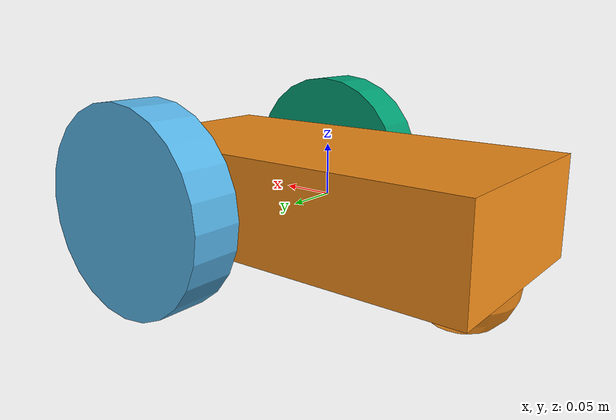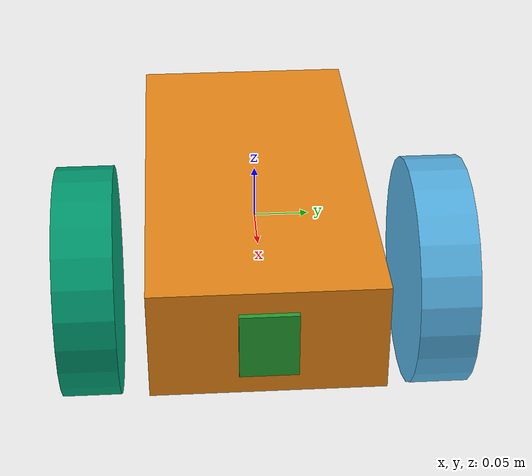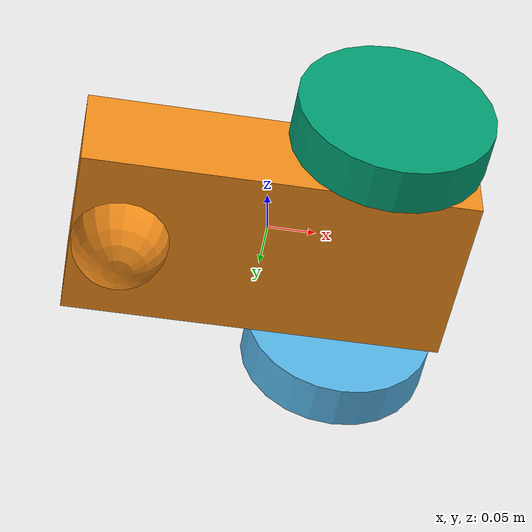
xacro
<?xml version='1.0'?>

<robot name="myrobot" xmlns:xacro="http://www.ros.org/wiki/xacro">

  <xacro:property name="cameraSize" value="0.05"/>
  <xacro:property name="cameraMass" value="0.1"/>

  <xacro:include filename="$(find mybot_description)/urdf/mybot.gazebo" />
  <xacro:include filename="$(find mybot_description)/urdf/materials.xacro" />
  <xacro:include filename="$(find mybot_description)/urdf/macros.xacro" />

  <link name='chassis'>
    <pose>0 0 0.1 0 0 0</pose>

    <inertial>
      <mass value="10.0"/>
      <origin xyz="0.0 0 0.1" rpy=" 0 0 0"/>
      <inertia
          ixx="0.5" ixy="0" ixz="0"
          iyy="1.0" iyz="0"
          izz="0.1"
      />
    </inertial>

    <collision name='collision'>
      <geometry>
        <box size=".4 .2 .1"/>
      </geometry>
    </collision>

    <visual name='chassis_visual'>
      <origin xyz="0 0 0" rpy=" 0 0 0"/>
      <geometry>
        <box size=".4 .2 .1"/>
      </geometry>
    </visual>

    <collision name='caster_collision'>
      <origin xyz="-0.15 0 -0.05" rpy=" 0 0 0"/>
      <geometry>
        <sphere radius="0.05"/>
      </geometry>
      <surface>
        <friction>
          <ode>
            <mu>0</mu>
            <mu2>0</mu2>
            <slip1>1.0</slip1>
            <slip2>1.0</slip2>
          </ode>
        </friction>
      </surface>
    </collision>

    <visual name='caster_visual'>
      <origin xyz="-0.15 0 -0.05" rpy=" 0 0 0"/>
      <geometry>
        <sphere radius="0.05"/>
      </geometry>
    </visual>
  </link>

  <link name="left_wheel">
    <!--origin xyz="0.1 0.13 0.1" rpy="0 1.5707 1.5707"/-->
    <collision name="collision">
      <origin xyz="0 0 0" rpy="0 1.5707 1.5707"/>
      <geometry>
        <cylinder radius="0.1" length="0.05"/>
      </geometry>
    </collision>
    <visual name="left_wheel_visual">
      <origin xyz="0 0 0" rpy="0 1.5707 1.5707"/>
      <geometry>
        <cylinder radius="0.1" length="0.05"/>
      </geometry>
    </visual>
    <inertial>
      <origin xyz="0 0 0" rpy="0 1.5707 1.5707"/>
      <mass value="5"/>
      <cylinder_inertia m="5" r="0.1" h="0.05"/>
      <inertia
        ixx="1.0" ixy="0.0" ixz="0.0"
        iyy="1.0" iyz="0.0"
        izz="1.0"/>
    </inertial>
  </link>

  <link name="right_wheel">
    <!--origin xyz="0.1 -0.13 0.1" rpy="0 1.5707 1.5707"/-->
    <collision name="collision">
      <origin xyz="0 0 0" rpy="0 1.5707 1.5707"/>
      <geometry>
        <cylinder radius="0.1" length="0.05"/>
      </geometry>
    </collision>
    <visual name="right_wheel_visual">
      <origin xyz="0 0 0" rpy="0 1.5707 1.5707"/>
      <geometry>
        <cylinder radius="0.1" length="0.05"/>
      </geometry>
    </visual>
    <inertial>
      <origin xyz="0 0 0" rpy="0 1.5707 1.5707"/>
      <mass value="5"/>
      <cylinder_inertia m="5" r="0.1" h="0.05"/>
      <inertia
        ixx="1.0" ixy="0.0" ixz="0.0"
        iyy="1.0" iyz="0.0"
        izz="1.0"/>
    </inertial>
  </link>

  <joint type="continuous" name="left_wheel_hinge">
    <origin xyz="0.1 0.15 0" rpy="0 0 0"/>
    <child link="left_wheel"/>
    <parent link="chassis"/>
    <axis xyz="0 1 0" rpy="0 0 0"/>
    <limit effort="100" velocity="100"/>
    <joint_properties damping="0.0" friction="0.0"/>
  </joint>

  <joint type="continuous" name="right_wheel_hinge">
    <origin xyz="0.1 -0.15 0" rpy="0 0 0"/>
    <child link="right_wheel"/>
    <parent link="chassis"/>
    <axis xyz="0 1 0" rpy="0 0 0"/>
    <limit effort="100" velocity="100"/>
    <joint_properties damping="0.0" friction="0.0"/>
  </joint>

  <link name="scanner">
    <visual name="scanner_vis">
      <geometry>
        <box size=".01 .05 .06" />
      </geometry>
      <material name="Green" />
    </visual>
    <inertial>
      <mass value="0.000001" />
      <inertia ixx="0.0001" ixy="0.0" ixz="0.0"
        iyy="0.0001" iyz="0.0"
        izz="0.0001" />
    </inertial>
  </link>

  <joint type="fixed" name="sensor_fixer">
    <origin xyz="0.2 0 0" rpy="0 0 0"/>
    <child link="scanner"/>
    <parent link="chassis"/>
  </joint>

</robot>
